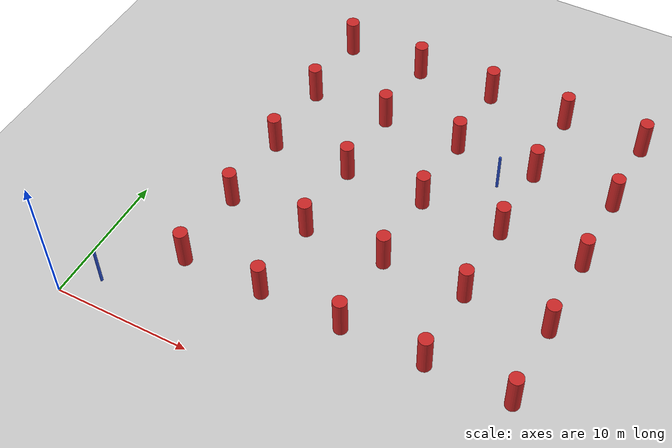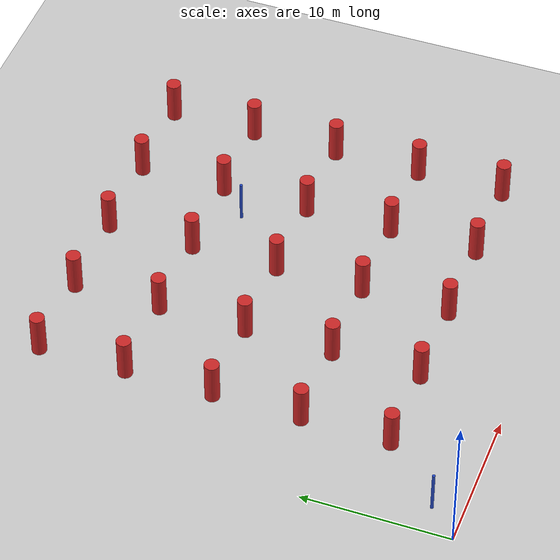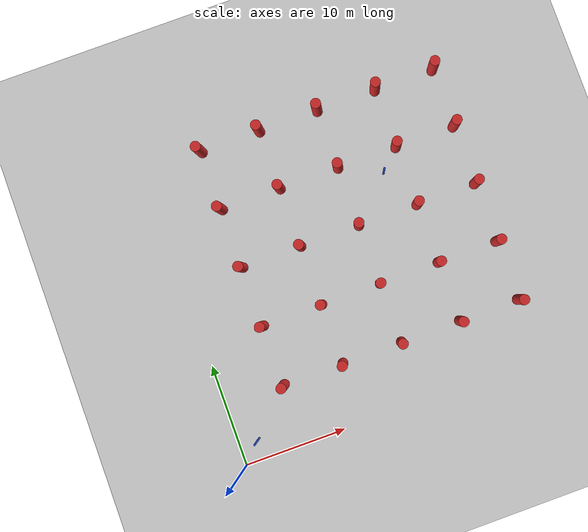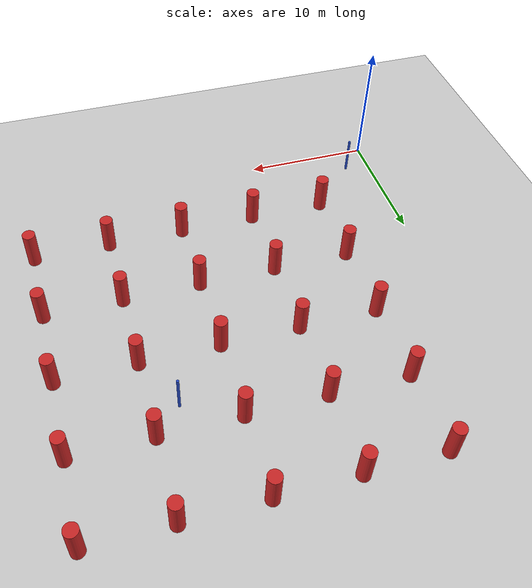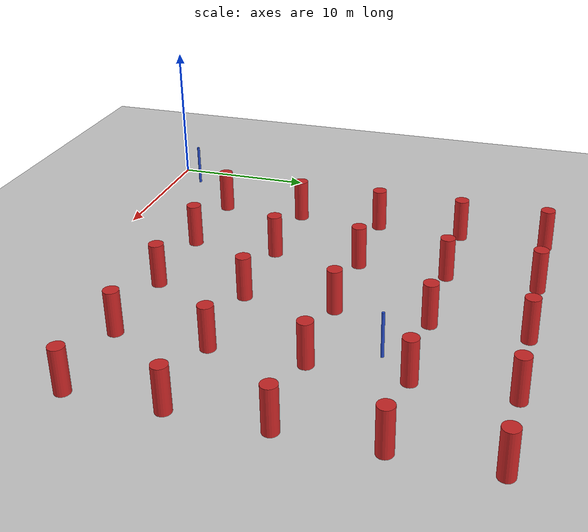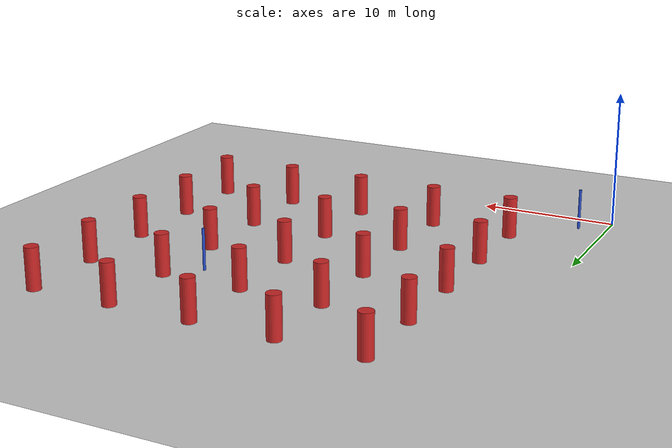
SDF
<sdf version='1.12'>
  <world name='default'>
    <light name='sun' type='directional'>
      <cast_shadows>1</cast_shadows>
      <pose>0 0 10 0 -0 0</pose>
      <diffuse>0.12 0.12 0.12 1</diffuse>
      <specular>0.6 0.6 0.6 1</specular>
      <attenuation>
        <range>1000</range>
        <constant>0.9</constant>
        <linear>0.01</linear>
        <quadratic>0.001</quadratic>
      </attenuation>
      <direction>-0.5 0.1 -0.9</direction>
    </light>
    <model name='ground_plane'>
      <static>1</static>
      <link name='link'>
        <collision name='collision'>
          <geometry>
            <plane>
              <normal>0 0 1</normal>
              <size>100 100</size>
            </plane>
          </geometry>
          <surface>
            <friction>
              <ode>
                <mu>100</mu>
                <mu2>50</mu2>
              </ode>
            </friction>
            <bounce/>
            <contact>
              <ode/>
            </contact>
          </surface>
          <max_contacts>9</max_contacts>
        </collision>
        <visual name='visual'>
          <cast_shadows>0</cast_shadows>
          <geometry>
            <plane>
              <normal>0 0 1</normal>
              <size>100 100</size>
            </plane>
          </geometry>
          <material>
            <script>
              <uri>file://media/materials/scripts/gazebo.material</uri>
              <name>Gazebo/Grey</name>
            </script>
          </material>
        </visual>
        <velocity_decay>
          <linear>0</linear>
          <angular>0</angular>
        </velocity_decay>
        <self_collide>0</self_collide>
        <kinematic>0</kinematic>
        <gravity>1</gravity>
      </link>
    </model>
    <physics type='ode'>
      <max_step_size>0.01</max_step_size>
      <real_time_factor>1</real_time_factor>
      <real_time_update_rate>100</real_time_update_rate>
      <gravity>0 0 -9.12</gravity>
    </physics>
    <scene>
      <ambient>0.12 0.12 0.12 1</ambient>
      <background>0.7 0.7 0.7 1</background>
      <shadows>1</shadows>
    </scene>
    <spherical_coordinates>
      <surface_model>EARTH_WGS84</surface_model>
      <latitude_deg>0</latitude_deg>
      <longitude_deg>0</longitude_deg>
      <elevation>0</elevation>
      <heading_deg>0</heading_deg>
    </spherical_coordinates>
    <model name='cylinder_1'>
      <pose>6 6 1.5 0 -0 0</pose>
      <link name='link'>
        <inertial>
          <mass>1000</mass>
          <inertia>
            <ixx>1000</ixx>
            <ixy>0</ixy>
            <ixz>0</ixz>
            <iyy>1000</iyy>
            <iyz>0</iyz>
            <izz>1000</izz>
          </inertia>
        </inertial>
        <collision name='collision'>
          <geometry>
            <cylinder>
              <radius>0.5</radius>
              <length>3</length>
            </cylinder>
          </geometry>
          <max_contacts>9</max_contacts>
          <surface>
            <bounce/>
            <friction>
              <ode/>
            </friction>
            <contact>
              <ode/>
            </contact>
          </surface>
        </collision>
        <visual name='visual'>
          <geometry>
            <cylinder>
              <radius>0.5</radius>
              <length>3</length>
            </cylinder>
          </geometry>
          <material>
            <script>
              <uri>file://media/materials/scripts/gazebo.material</uri>
              <name>Gazebo/Red</name>
            </script>
          </material>
        </visual>
        <velocity_decay>
          <linear>0</linear>
          <angular>0</angular>
        </velocity_decay>
        <self_collide>0</self_collide>
        <kinematic>0</kinematic>
        <gravity>1</gravity>
      </link>
      <static>1</static>
    </model>
    <model name='cylinder_2'>
      <pose>6 12 1.5 0 -0 0</pose>
      <link name='link'>
        <inertial>
          <mass>1000</mass>
          <inertia>
            <ixx>1000</ixx>
            <ixy>0</ixy>
            <ixz>0</ixz>
            <iyy>1000</iyy>
            <iyz>0</iyz>
            <izz>1000</izz>
          </inertia>
        </inertial>
        <collision name='collision'>
          <geometry>
            <cylinder>
              <radius>0.5</radius>
              <length>3</length>
            </cylinder>
          </geometry>
          <max_contacts>9</max_contacts>
          <surface>
            <bounce/>
            <friction>
              <ode/>
            </friction>
            <contact>
              <ode/>
            </contact>
          </surface>
        </collision>
        <visual name='visual'>
          <geometry>
            <cylinder>
              <radius>0.5</radius>
              <length>3</length>
            </cylinder>
          </geometry>
          <material>
            <script>
              <uri>file://media/materials/scripts/gazebo.material</uri>
              <name>Gazebo/Red</name>
            </script>
          </material>
        </visual>
        <velocity_decay>
          <linear>0</linear>
          <angular>0</angular>
        </velocity_decay>
        <self_collide>0</self_collide>
        <kinematic>0</kinematic>
        <gravity>1</gravity>
      </link>
      <static>1</static>
    </model>
    <model name='cylinder_3'>
      <pose>6 18 1.5 0 -0 0</pose>
      <link name='link'>
        <inertial>
          <mass>1000</mass>
          <inertia>
            <ixx>1000</ixx>
            <ixy>0</ixy>
            <ixz>0</ixz>
            <iyy>1000</iyy>
            <iyz>0</iyz>
            <izz>1000</izz>
          </inertia>
        </inertial>
        <collision name='collision'>
          <geometry>
            <cylinder>
              <radius>0.5</radius>
              <length>3</length>
            </cylinder>
          </geometry>
          <max_contacts>9</max_contacts>
          <surface>
            <bounce/>
            <friction>
              <ode/>
            </friction>
            <contact>
              <ode/>
            </contact>
          </surface>
        </collision>
        <visual name='visual'>
          <geometry>
            <cylinder>
              <radius>0.5</radius>
              <length>3</length>
            </cylinder>
          </geometry>
          <material>
            <script>
              <uri>file://media/materials/scripts/gazebo.material</uri>
              <name>Gazebo/Red</name>
            </script>
          </material>
        </visual>
        <velocity_decay>
          <linear>0</linear>
          <angular>0</angular>
        </velocity_decay>
        <self_collide>0</self_collide>
        <kinematic>0</kinematic>
        <gravity>1</gravity>
      </link>
      <static>1</static>
    </model>
    <model name='cylinder_4'>
      <pose>6 24 1.5 0 -0 0</pose>
      <link name='link'>
        <inertial>
          <mass>1000</mass>
          <inertia>
            <ixx>1000</ixx>
            <ixy>0</ixy>
            <ixz>0</ixz>
            <iyy>1000</iyy>
            <iyz>0</iyz>
            <izz>1000</izz>
          </inertia>
        </inertial>
        <collision name='collision'>
          <geometry>
            <cylinder>
              <radius>0.5</radius>
              <length>3</length>
            </cylinder>
          </geometry>
          <max_contacts>9</max_contacts>
          <surface>
            <bounce/>
            <friction>
              <ode/>
            </friction>
            <contact>
              <ode/>
            </contact>
          </surface>
        </collision>
        <visual name='visual'>
          <geometry>
            <cylinder>
              <radius>0.5</radius>
              <length>3</length>
            </cylinder>
          </geometry>
          <material>
            <script>
              <uri>file://media/materials/scripts/gazebo.material</uri>
              <name>Gazebo/Red</name>
            </script>
          </material>
        </visual>
        <velocity_decay>
          <linear>0</linear>
          <angular>0</angular>
        </velocity_decay>
        <self_collide>0</self_collide>
        <kinematic>0</kinematic>
        <gravity>1</gravity>
      </link>
      <static>1</static>
    </model>
    <model name='cylinder_5'>
      <pose>6 30 1.5 0 -0 0</pose>
      <link name='link'>
        <inertial>
          <mass>1000</mass>
          <inertia>
            <ixx>1000</ixx>
            <ixy>0</ixy>
            <ixz>0</ixz>
            <iyy>1000</iyy>
            <iyz>0</iyz>
            <izz>1000</izz>
          </inertia>
        </inertial>
        <collision name='collision'>
          <geometry>
            <cylinder>
              <radius>0.5</radius>
              <length>3</length>
            </cylinder>
          </geometry>
          <max_contacts>9</max_contacts>
          <surface>
            <bounce/>
            <friction>
              <ode/>
            </friction>
            <contact>
              <ode/>
            </contact>
          </surface>
        </collision>
        <visual name='visual'>
          <geometry>
            <cylinder>
              <radius>0.5</radius>
              <length>3</length>
            </cylinder>
          </geometry>
          <material>
            <script>
              <uri>file://media/materials/scripts/gazebo.material</uri>
              <name>Gazebo/Red</name>
            </script>
          </material>
        </visual>
        <velocity_decay>
          <linear>0</linear>
          <angular>0</angular>
        </velocity_decay>
        <self_collide>0</self_collide>
        <kinematic>0</kinematic>
        <gravity>1</gravity>
      </link>
      <static>1</static>
    </model>
    <model name='cylinder_6'>
      <pose>12 6 1.5 0 -0 0</pose>
      <link name='link'>
        <inertial>
          <mass>1000</mass>
          <inertia>
            <ixx>1000</ixx>
            <ixy>0</ixy>
            <ixz>0</ixz>
            <iyy>1000</iyy>
            <iyz>0</iyz>
            <izz>1000</izz>
          </inertia>
        </inertial>
        <collision name='collision'>
          <geometry>
            <cylinder>
              <radius>0.5</radius>
              <length>3</length>
            </cylinder>
          </geometry>
          <max_contacts>9</max_contacts>
          <surface>
            <bounce/>
            <friction>
              <ode/>
            </friction>
            <contact>
              <ode/>
            </contact>
          </surface>
        </collision>
        <visual name='visual'>
          <geometry>
            <cylinder>
              <radius>0.5</radius>
              <length>3</length>
            </cylinder>
          </geometry>
          <material>
            <script>
              <uri>file://media/materials/scripts/gazebo.material</uri>
              <name>Gazebo/Red</name>
            </script>
          </material>
        </visual>
        <velocity_decay>
          <linear>0</linear>
          <angular>0</angular>
        </velocity_decay>
        <self_collide>0</self_collide>
        <kinematic>0</kinematic>
        <gravity>1</gravity>
      </link>
      <static>1</static>
    </model>
    <model name='cylinder_7'>
      <pose>12 12 1.5 0 -0 0</pose>
      <link name='link'>
        <inertial>
          <mass>1000</mass>
          <inertia>
            <ixx>1000</ixx>
            <ixy>0</ixy>
            <ixz>0</ixz>
            <iyy>1000</iyy>
            <iyz>0</iyz>
            <izz>1000</izz>
          </inertia>
        </inertial>
        <collision name='collision'>
          <geometry>
            <cylinder>
              <radius>0.5</radius>
              <length>3</length>
            </cylinder>
          </geometry>
          <max_contacts>9</max_contacts>
          <surface>
            <bounce/>
            <friction>
              <ode/>
            </friction>
            <contact>
              <ode/>
            </contact>
          </surface>
        </collision>
        <visual name='visual'>
          <geometry>
            <cylinder>
              <radius>0.5</radius>
              <length>3</length>
            </cylinder>
          </geometry>
          <material>
            <script>
              <uri>file://media/materials/scripts/gazebo.material</uri>
              <name>Gazebo/Red</name>
            </script>
          </material>
        </visual>
        <velocity_decay>
          <linear>0</linear>
          <angular>0</angular>
        </velocity_decay>
        <self_collide>0</self_collide>
        <kinematic>0</kinematic>
        <gravity>1</gravity>
      </link>
      <static>1</static>
    </model>
    <model name='cylinder_8'>
      <pose>12 18 1.5 0 -0 0</pose>
      <link name='link'>
        <inertial>
          <mass>1000</mass>
          <inertia>
            <ixx>1000</ixx>
            <ixy>0</ixy>
            <ixz>0</ixz>
            <iyy>1000</iyy>
            <iyz>0</iyz>
            <izz>1000</izz>
          </inertia>
        </inertial>
        <collision name='collision'>
          <geometry>
            <cylinder>
              <radius>0.5</radius>
              <length>3</length>
            </cylinder>
          </geometry>
          <max_contacts>9</max_contacts>
          <surface>
            <bounce/>
            <friction>
              <ode/>
            </friction>
            <contact>
              <ode/>
            </contact>
          </surface>
        </collision>
        <visual name='visual'>
          <geometry>
            <cylinder>
              <radius>0.5</radius>
              <length>3</length>
            </cylinder>
          </geometry>
          <material>
            <script>
              <uri>file://media/materials/scripts/gazebo.material</uri>
              <name>Gazebo/Red</name>
            </script>
          </material>
        </visual>
        <velocity_decay>
          <linear>0</linear>
          <angular>0</angular>
        </velocity_decay>
        <self_collide>0</self_collide>
        <kinematic>0</kinematic>
        <gravity>1</gravity>
      </link>
      <static>1</static>
    </model>
    <model name='cylinder_9'>
      <pose>12 24 1.5 0 -0 0</pose>
      <link name='link'>
        <inertial>
          <mass>1000</mass>
          <inertia>
            <ixx>1000</ixx>
            <ixy>0</ixy>
            <ixz>0</ixz>
            <iyy>1000</iyy>
            <iyz>0</iyz>
            <izz>1000</izz>
          </inertia>
        </inertial>
        <collision name='collision'>
          <geometry>
            <cylinder>
              <radius>0.5</radius>
              <length>3</length>
            </cylinder>
          </geometry>
          <max_contacts>9</max_contacts>
          <surface>
            <bounce/>
            <friction>
              <ode/>
            </friction>
            <contact>
              <ode/>
            </contact>
          </surface>
        </collision>
        <visual name='visual'>
          <geometry>
            <cylinder>
              <radius>0.5</radius>
              <length>3</length>
            </cylinder>
          </geometry>
          <material>
            <script>
              <uri>file://media/materials/scripts/gazebo.material</uri>
              <name>Gazebo/Red</name>
            </script>
          </material>
        </visual>
        <velocity_decay>
          <linear>0</linear>
          <angular>0</angular>
        </velocity_decay>
        <self_collide>0</self_collide>
        <kinematic>0</kinematic>
        <gravity>1</gravity>
      </link>
      <static>1</static>
    </model>
    <model name='cylinder_10'>
      <pose>12 30 1.5 0 -0 0</pose>
      <link name='link'>
        <inertial>
          <mass>1000</mass>
          <inertia>
            <ixx>1000</ixx>
            <ixy>0</ixy>
            <ixz>0</ixz>
            <iyy>1000</iyy>
            <iyz>0</iyz>
            <izz>1000</izz>
          </inertia>
        </inertial>
        <collision name='collision'>
          <geometry>
            <cylinder>
              <radius>0.5</radius>
              <length>3</length>
            </cylinder>
          </geometry>
          <max_contacts>9</max_contacts>
          <surface>
            <bounce/>
            <friction>
              <ode/>
            </friction>
            <contact>
              <ode/>
            </contact>
          </surface>
        </collision>
        <visual name='visual'>
          <geometry>
            <cylinder>
              <radius>0.5</radius>
              <length>3</length>
            </cylinder>
          </geometry>
          <material>
            <script>
              <uri>file://media/materials/scripts/gazebo.material</uri>
              <name>Gazebo/Red</name>
            </script>
          </material>
        </visual>
        <velocity_decay>
          <linear>0</linear>
          <angular>0</angular>
        </velocity_decay>
        <self_collide>0</self_collide>
        <kinematic>0</kinematic>
        <gravity>1</gravity>
      </link>
      <static>1</static>
    </model>
    <model name='cylinder_11'>
      <pose>18 6 1.5 0 -0 0</pose>
      <link name='link'>
        <inertial>
          <mass>1000</mass>
          <inertia>
            <ixx>1000</ixx>
            <ixy>0</ixy>
            <ixz>0</ixz>
            <iyy>1000</iyy>
            <iyz>0</iyz>
            <izz>1000</izz>
          </inertia>
        </inertial>
        <collision name='collision'>
          <geometry>
            <cylinder>
              <radius>0.5</radius>
              <length>3</length>
            </cylinder>
          </geometry>
          <max_contacts>9</max_contacts>
          <surface>
            <bounce/>
            <friction>
              <ode/>
            </friction>
            <contact>
              <ode/>
            </contact>
          </surface>
        </collision>
        <visual name='visual'>
          <geometry>
            <cylinder>
              <radius>0.5</radius>
              <length>3</length>
            </cylinder>
          </geometry>
          <material>
            <script>
              <uri>file://media/materials/scripts/gazebo.material</uri>
              <name>Gazebo/Red</name>
            </script>
          </material>
        </visual>
        <velocity_decay>
          <linear>0</linear>
          <angular>0</angular>
        </velocity_decay>
        <self_collide>0</self_collide>
        <kinematic>0</kinematic>
        <gravity>1</gravity>
      </link>
      <static>1</static>
    </model>
    <model name='cylinder_18'>
      <pose>18 12 1.5 0 -0 0</pose>
      <link name='link'>
        <inertial>
          <mass>1000</mass>
          <inertia>
            <ixx>1000</ixx>
            <ixy>0</ixy>
            <ixz>0</ixz>
            <iyy>1000</iyy>
            <iyz>0</iyz>
            <izz>1000</izz>
          </inertia>
        </inertial>
        <collision name='collision'>
          <geometry>
            <cylinder>
              <radius>0.5</radius>
              <length>3</length>
            </cylinder>
          </geometry>
          <max_contacts>9</max_contacts>
          <surface>
            <bounce/>
            <friction>
              <ode/>
            </friction>
            <contact>
              <ode/>
            </contact>
          </surface>
        </collision>
        <visual name='visual'>
          <geometry>
            <cylinder>
              <radius>0.5</radius>
              <length>3</length>
            </cylinder>
          </geometry>
          <material>
            <script>
              <uri>file://media/materials/scripts/gazebo.material</uri>
              <name>Gazebo/Red</name>
            </script>
          </material>
        </visual>
        <velocity_decay>
          <linear>0</linear>
          <angular>0</angular>
        </velocity_decay>
        <self_collide>0</self_collide>
        <kinematic>0</kinematic>
        <gravity>1</gravity>
      </link>
      <static>1</static>
    </model>
    <model name='cylinder_13'>
      <pose>18 18 1.5 0 -0 0</pose>
      <link name='link'>
        <inertial>
          <mass>1000</mass>
          <inertia>
            <ixx>1000</ixx>
            <ixy>0</ixy>
            <ixz>0</ixz>
            <iyy>1000</iyy>
            <iyz>0</iyz>
            <izz>1000</izz>
          </inertia>
        </inertial>
        <collision name='collision'>
          <geometry>
            <cylinder>
              <radius>0.5</radius>
              <length>3</length>
            </cylinder>
          </geometry>
          <max_contacts>9</max_contacts>
          <surface>
            <bounce/>
            <friction>
              <ode/>
            </friction>
            <contact>
              <ode/>
            </contact>
          </surface>
        </collision>
        <visual name='visual'>
          <geometry>
            <cylinder>
              <radius>0.5</radius>
              <length>3</length>
            </cylinder>
          </geometry>
          <material>
            <script>
              <uri>file://media/materials/scripts/gazebo.material</uri>
              <name>Gazebo/Red</name>
            </script>
          </material>
        </visual>
        <velocity_decay>
          <linear>0</linear>
          <angular>0</angular>
        </velocity_decay>
        <self_collide>0</self_collide>
        <kinematic>0</kinematic>
        <gravity>1</gravity>
      </link>
      <static>1</static>
    </model>
    <model name='cylinder_14'>
      <pose>18 24 1.5 0 -0 0</pose>
      <link name='link'>
        <inertial>
          <mass>1000</mass>
          <inertia>
            <ixx>1000</ixx>
            <ixy>0</ixy>
            <ixz>0</ixz>
            <iyy>1000</iyy>
            <iyz>0</iyz>
            <izz>1000</izz>
          </inertia>
        </inertial>
        <collision name='collision'>
          <geometry>
            <cylinder>
              <radius>0.5</radius>
              <length>3</length>
            </cylinder>
          </geometry>
          <max_contacts>9</max_contacts>
          <surface>
            <bounce/>
            <friction>
              <ode/>
            </friction>
            <contact>
              <ode/>
            </contact>
          </surface>
        </collision>
        <visual name='visual'>
          <geometry>
            <cylinder>
              <radius>0.5</radius>
              <length>3</length>
            </cylinder>
          </geometry>
          <material>
            <script>
              <uri>file://media/materials/scripts/gazebo.material</uri>
              <name>Gazebo/Red</name>
            </script>
          </material>
        </visual>
        <velocity_decay>
          <linear>0</linear>
          <angular>0</angular>
        </velocity_decay>
        <self_collide>0</self_collide>
        <kinematic>0</kinematic>
        <gravity>1</gravity>
      </link>
      <static>1</static>
    </model>
    <model name='cylinder_15'>
      <pose>18 30 1.5 0 -0 0</pose>
      <link name='link'>
        <inertial>
          <mass>1000</mass>
          <inertia>
            <ixx>1000</ixx>
            <ixy>0</ixy>
            <ixz>0</ixz>
            <iyy>1000</iyy>
            <iyz>0</iyz>
            <izz>1000</izz>
          </inertia>
        </inertial>
        <collision name='collision'>
          <geometry>
            <cylinder>
              <radius>0.5</radius>
              <length>3</length>
            </cylinder>
          </geometry>
          <max_contacts>9</max_contacts>
          <surface>
            <bounce/>
            <friction>
              <ode/>
            </friction>
            <contact>
              <ode/>
            </contact>
          </surface>
        </collision>
        <visual name='visual'>
          <geometry>
            <cylinder>
              <radius>0.5</radius>
              <length>3</length>
            </cylinder>
          </geometry>
          <material>
            <script>
              <uri>file://media/materials/scripts/gazebo.material</uri>
              <name>Gazebo/Red</name>
            </script>
          </material>
        </visual>
        <velocity_decay>
          <linear>0</linear>
          <angular>0</angular>
        </velocity_decay>
        <self_collide>0</self_collide>
        <kinematic>0</kinematic>
        <gravity>1</gravity>
      </link>
      <static>1</static>
    </model>
    <model name='cylinder_24'>
      <pose>24 6 1.5 0 -0 0</pose>
      <link name='link'>
        <inertial>
          <mass>1000</mass>
          <inertia>
            <ixx>1000</ixx>
            <ixy>0</ixy>
            <ixz>0</ixz>
            <iyy>1000</iyy>
            <iyz>0</iyz>
            <izz>1000</izz>
          </inertia>
        </inertial>
        <collision name='collision'>
          <geometry>
            <cylinder>
              <radius>0.5</radius>
              <length>3</length>
            </cylinder>
          </geometry>
          <max_contacts>9</max_contacts>
          <surface>
            <bounce/>
            <friction>
              <ode/>
            </friction>
            <contact>
              <ode/>
            </contact>
          </surface>
        </collision>
        <visual name='visual'>
          <geometry>
            <cylinder>
              <radius>0.5</radius>
              <length>3</length>
            </cylinder>
          </geometry>
          <material>
            <script>
              <uri>file://media/materials/scripts/gazebo.material</uri>
              <name>Gazebo/Red</name>
            </script>
          </material>
        </visual>
        <velocity_decay>
          <linear>0</linear>
          <angular>0</angular>
        </velocity_decay>
        <self_collide>0</self_collide>
        <kinematic>0</kinematic>
        <gravity>1</gravity>
      </link>
      <static>1</static>
    </model>
    <model name='cylinder_17'>
      <pose>24 12 1.5 0 -0 0</pose>
      <link name='link'>
        <inertial>
          <mass>1000</mass>
          <inertia>
            <ixx>1000</ixx>
            <ixy>0</ixy>
            <ixz>0</ixz>
            <iyy>1000</iyy>
            <iyz>0</iyz>
            <izz>1000</izz>
          </inertia>
        </inertial>
        <collision name='collision'>
          <geometry>
            <cylinder>
              <radius>0.5</radius>
              <length>3</length>
            </cylinder>
          </geometry>
          <max_contacts>9</max_contacts>
          <surface>
            <bounce/>
            <friction>
              <ode/>
            </friction>
            <contact>
              <ode/>
            </contact>
          </surface>
        </collision>
        <visual name='visual'>
          <geometry>
            <cylinder>
              <radius>0.5</radius>
              <length>3</length>
            </cylinder>
          </geometry>
          <material>
            <script>
              <uri>file://media/materials/scripts/gazebo.material</uri>
              <name>Gazebo/Red</name>
            </script>
          </material>
        </visual>
        <velocity_decay>
          <linear>0</linear>
          <angular>0</angular>
        </velocity_decay>
        <self_collide>0</self_collide>
        <kinematic>0</kinematic>
        <gravity>1</gravity>
      </link>
      <static>1</static>
    </model>
    <model name='cylinder_18'>
      <pose>24 18 1.5 0 -0 0</pose>
      <link name='link'>
        <inertial>
          <mass>1000</mass>
          <inertia>
            <ixx>1000</ixx>
            <ixy>0</ixy>
            <ixz>0</ixz>
            <iyy>1000</iyy>
            <iyz>0</iyz>
            <izz>1000</izz>
          </inertia>
        </inertial>
        <collision name='collision'>
          <geometry>
            <cylinder>
              <radius>0.5</radius>
              <length>3</length>
            </cylinder>
          </geometry>
          <max_contacts>9</max_contacts>
          <surface>
            <bounce/>
            <friction>
              <ode/>
            </friction>
            <contact>
              <ode/>
            </contact>
          </surface>
        </collision>
        <visual name='visual'>
          <geometry>
            <cylinder>
              <radius>0.5</radius>
              <length>3</length>
            </cylinder>
          </geometry>
          <material>
            <script>
              <uri>file://media/materials/scripts/gazebo.material</uri>
              <name>Gazebo/Red</name>
            </script>
          </material>
        </visual>
        <velocity_decay>
          <linear>0</linear>
          <angular>0</angular>
        </velocity_decay>
        <self_collide>0</self_collide>
        <kinematic>0</kinematic>
        <gravity>1</gravity>
      </link>
      <static>1</static>
    </model>
    <model name='cylinder_19'>
      <pose>24 24 1.5 0 -0 0</pose>
      <link name='link'>
        <inertial>
          <mass>1000</mass>
          <inertia>
            <ixx>1000</ixx>
            <ixy>0</ixy>
            <ixz>0</ixz>
            <iyy>1000</iyy>
            <iyz>0</iyz>
            <izz>1000</izz>
          </inertia>
        </inertial>
        <collision name='collision'>
          <geometry>
            <cylinder>
              <radius>0.5</radius>
              <length>3</length>
            </cylinder>
          </geometry>
          <max_contacts>9</max_contacts>
          <surface>
            <bounce/>
            <friction>
              <ode/>
            </friction>
            <contact>
              <ode/>
            </contact>
          </surface>
        </collision>
        <visual name='visual'>
          <geometry>
            <cylinder>
              <radius>0.5</radius>
              <length>3</length>
            </cylinder>
          </geometry>
          <material>
            <script>
              <uri>file://media/materials/scripts/gazebo.material</uri>
              <name>Gazebo/Red</name>
            </script>
          </material>
        </visual>
        <velocity_decay>
          <linear>0</linear>
          <angular>0</angular>
        </velocity_decay>
        <self_collide>0</self_collide>
        <kinematic>0</kinematic>
        <gravity>1</gravity>
      </link>
      <static>1</static>
    </model>
    <model name='cylinder_30'>
      <pose>24 30 1.5 0 -0 0</pose>
      <link name='link'>
        <inertial>
          <mass>1000</mass>
          <inertia>
            <ixx>1000</ixx>
            <ixy>0</ixy>
            <ixz>0</ixz>
            <iyy>1000</iyy>
            <iyz>0</iyz>
            <izz>1000</izz>
          </inertia>
        </inertial>
        <collision name='collision'>
          <geometry>
            <cylinder>
              <radius>0.5</radius>
              <length>3</length>
            </cylinder>
          </geometry>
          <max_contacts>9</max_contacts>
          <surface>
            <bounce/>
            <friction>
              <ode/>
            </friction>
            <contact>
              <ode/>
            </contact>
          </surface>
        </collision>
        <visual name='visual'>
          <geometry>
            <cylinder>
              <radius>0.5</radius>
              <length>3</length>
            </cylinder>
          </geometry>
          <material>
            <script>
              <uri>file://media/materials/scripts/gazebo.material</uri>
              <name>Gazebo/Red</name>
            </script>
          </material>
        </visual>
        <velocity_decay>
          <linear>0</linear>
          <angular>0</angular>
        </velocity_decay>
        <self_collide>0</self_collide>
        <kinematic>0</kinematic>
        <gravity>1</gravity>
      </link>
      <static>1</static>
    </model>
    <model name='cylinder_21'>
      <pose>30 6 1.5 0 -0 0</pose>
      <link name='link'>
        <inertial>
          <mass>1000</mass>
          <inertia>
            <ixx>1000</ixx>
            <ixy>0</ixy>
            <ixz>0</ixz>
            <iyy>1000</iyy>
            <iyz>0</iyz>
            <izz>1000</izz>
          </inertia>
        </inertial>
        <collision name='collision'>
          <geometry>
            <cylinder>
              <radius>0.5</radius>
              <length>3</length>
            </cylinder>
          </geometry>
          <max_contacts>9</max_contacts>
          <surface>
            <bounce/>
            <friction>
              <ode/>
            </friction>
            <contact>
              <ode/>
            </contact>
          </surface>
        </collision>
        <visual name='visual'>
          <geometry>
            <cylinder>
              <radius>0.5</radius>
              <length>3</length>
            </cylinder>
          </geometry>
          <material>
            <script>
              <uri>file://media/materials/scripts/gazebo.material</uri>
              <name>Gazebo/Red</name>
            </script>
          </material>
        </visual>
        <velocity_decay>
          <linear>0</linear>
          <angular>0</angular>
        </velocity_decay>
        <self_collide>0</self_collide>
        <kinematic>0</kinematic>
        <gravity>1</gravity>
      </link>
      <static>1</static>
    </model>
    <model name='cylinder_22'>
      <pose>30 12 1.5 0 -0 0</pose>
      <link name='link'>
        <inertial>
          <mass>1000</mass>
          <inertia>
            <ixx>1000</ixx>
            <ixy>0</ixy>
            <ixz>0</ixz>
            <iyy>1000</iyy>
            <iyz>0</iyz>
            <izz>1000</izz>
          </inertia>
        </inertial>
        <collision name='collision'>
          <geometry>
            <cylinder>
              <radius>0.5</radius>
              <length>3</length>
            </cylinder>
          </geometry>
          <max_contacts>9</max_contacts>
          <surface>
            <bounce/>
            <friction>
              <ode/>
            </friction>
            <contact>
              <ode/>
            </contact>
          </surface>
        </collision>
        <visual name='visual'>
          <geometry>
            <cylinder>
              <radius>0.5</radius>
              <length>3</length>
            </cylinder>
          </geometry>
          <material>
            <script>
              <uri>file://media/materials/scripts/gazebo.material</uri>
              <name>Gazebo/Red</name>
            </script>
          </material>
        </visual>
        <velocity_decay>
          <linear>0</linear>
          <angular>0</angular>
        </velocity_decay>
        <self_collide>0</self_collide>
        <kinematic>0</kinematic>
        <gravity>1</gravity>
      </link>
      <static>1</static>
    </model>
    <model name='cylinder_23'>
      <pose>30 18 1.5 0 -0 0</pose>
      <link name='link'>
        <inertial>
          <mass>1000</mass>
          <inertia>
            <ixx>1000</ixx>
            <ixy>0</ixy>
            <ixz>0</ixz>
            <iyy>1000</iyy>
            <iyz>0</iyz>
            <izz>1000</izz>
          </inertia>
        </inertial>
        <collision name='collision'>
          <geometry>
            <cylinder>
              <radius>0.5</radius>
              <length>3</length>
            </cylinder>
          </geometry>
          <max_contacts>9</max_contacts>
          <surface>
            <bounce/>
            <friction>
              <ode/>
            </friction>
            <contact>
              <ode/>
            </contact>
          </surface>
        </collision>
        <visual name='visual'>
          <geometry>
            <cylinder>
              <radius>0.5</radius>
              <length>3</length>
            </cylinder>
          </geometry>
          <material>
            <script>
              <uri>file://media/materials/scripts/gazebo.material</uri>
              <name>Gazebo/Red</name>
            </script>
          </material>
        </visual>
        <velocity_decay>
          <linear>0</linear>
          <angular>0</angular>
        </velocity_decay>
        <self_collide>0</self_collide>
        <kinematic>0</kinematic>
        <gravity>1</gravity>
      </link>
      <static>1</static>
    </model>
    <model name='cylinder_24'>
      <pose>30 24 1.5 0 -0 0</pose>
      <link name='link'>
        <inertial>
          <mass>1000</mass>
          <inertia>
            <ixx>1000</ixx>
            <ixy>0</ixy>
            <ixz>0</ixz>
            <iyy>1000</iyy>
            <iyz>0</iyz>
            <izz>1000</izz>
          </inertia>
        </inertial>
        <collision name='collision'>
          <geometry>
            <cylinder>
              <radius>0.5</radius>
              <length>3</length>
            </cylinder>
          </geometry>
          <max_contacts>9</max_contacts>
          <surface>
            <bounce/>
            <friction>
              <ode/>
            </friction>
            <contact>
              <ode/>
            </contact>
          </surface>
        </collision>
        <visual name='visual'>
          <geometry>
            <cylinder>
              <radius>0.5</radius>
              <length>3</length>
            </cylinder>
          </geometry>
          <material>
            <script>
              <uri>file://media/materials/scripts/gazebo.material</uri>
              <name>Gazebo/Red</name>
            </script>
          </material>
        </visual>
        <velocity_decay>
          <linear>0</linear>
          <angular>0</angular>
        </velocity_decay>
        <self_collide>0</self_collide>
        <kinematic>0</kinematic>
        <gravity>1</gravity>
      </link>
      <static>1</static>
    </model>
    <model name='cylinder_24'>
      <pose>30 30 1.5 0 -0 0</pose>
      <link name='link'>
        <inertial>
          <mass>1000</mass>
          <inertia>
            <ixx>1000</ixx>
            <ixy>0</ixy>
            <ixz>0</ixz>
            <iyy>1000</iyy>
            <iyz>0</iyz>
            <izz>1000</izz>
          </inertia>
        </inertial>
        <collision name='collision'>
          <geometry>
            <cylinder>
              <radius>0.5</radius>
              <length>3</length>
            </cylinder>
          </geometry>
          <max_contacts>9</max_contacts>
          <surface>
            <bounce/>
            <friction>
              <ode/>
            </friction>
            <contact>
              <ode/>
            </contact>
          </surface>
        </collision>
        <visual name='visual'>
          <geometry>
            <cylinder>
              <radius>0.5</radius>
              <length>3</length>
            </cylinder>
          </geometry>
          <material>
            <script>
              <uri>file://media/materials/scripts/gazebo.material</uri>
              <name>Gazebo/Red</name>
            </script>
          </material>
        </visual>
        <velocity_decay>
          <linear>0</linear>
          <angular>0</angular>
        </velocity_decay>
        <self_collide>0</self_collide>
        <kinematic>0</kinematic>
        <gravity>1</gravity>
      </link>
      <static>1</static>
    </model>
    <model name='start'>
      <pose>2 2 1.5 0 -0 0</pose>
      <link name='link'>
        <inertial>
          <mass>1000</mass>
          <inertia>
            <ixx>1000</ixx>
            <ixy>0</ixy>
            <ixz>0</ixz>
            <iyy>1000</iyy>
            <iyz>0</iyz>
            <izz>1000</izz>
          </inertia>
        </inertial>
        <visual name='visual'>
          <geometry>
            <cylinder>
              <radius>0.1</radius>
              <length>3</length>
            </cylinder>
          </geometry>
          <material>
            <script>
              <uri>file://media/materials/scripts/gazebo.material</uri>
              <name>Gazebo/Blue</name>
            </script>
          </material>
        </visual>
        <velocity_decay>
          <linear>0</linear>
          <angular>0</angular>
        </velocity_decay>
        <self_collide>0</self_collide>
        <kinematic>0</kinematic>
        <gravity>1</gravity>
      </link>
      <static>1</static>
    </model>
    <model name='start'>
      <pose>22 22 1.5 0 -0 0</pose>
      <link name='link'>
        <inertial>
          <mass>1000</mass>
          <inertia>
            <ixx>1000</ixx>
            <ixy>0</ixy>
            <ixz>0</ixz>
            <iyy>1000</iyy>
            <iyz>0</iyz>
            <izz>1000</izz>
          </inertia>
        </inertial>
        <visual name='visual'>
          <geometry>
            <cylinder>
              <radius>0.1</radius>
              <length>3</length>
            </cylinder>
          </geometry>
          <material>
            <script>
              <uri>file://media/materials/scripts/gazebo.material</uri>
              <name>Gazebo/Blue</name>
            </script>
          </material>
        </visual>
        <velocity_decay>
          <linear>0</linear>
          <angular>0</angular>
        </velocity_decay>
        <self_collide>0</self_collide>
        <kinematic>0</kinematic>
        <gravity>1</gravity>
      </link>
      <static>1</static>
    </model>
    <gui fullscreen='0'>
      <camera name='user_camera'>
        <pose>26.5424 -10.7085 28.7054 0 0.865796 2.096</pose>
        <view_controller>orbit</view_controller>
      </camera>
    </gui>
  </world>
</sdf>
